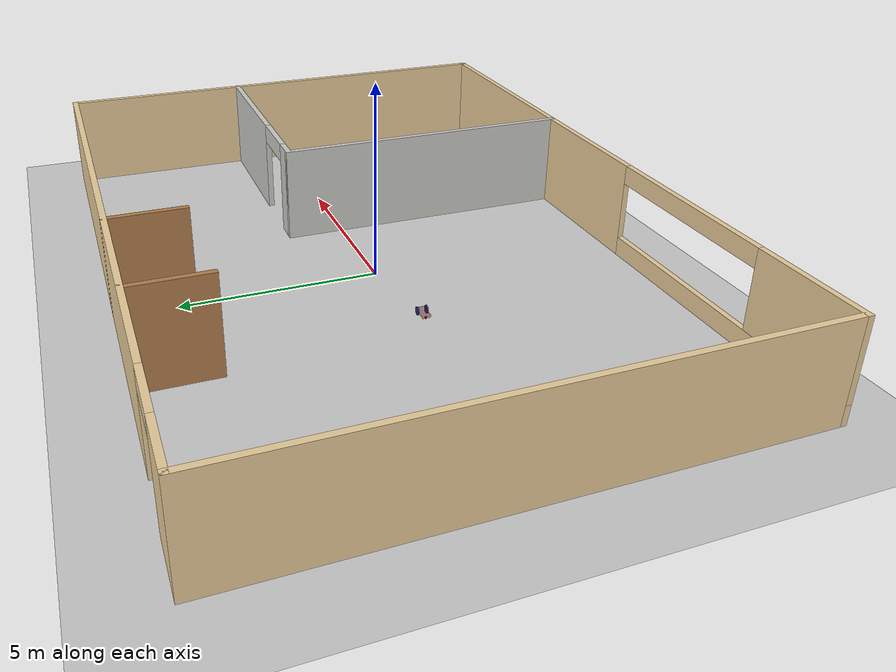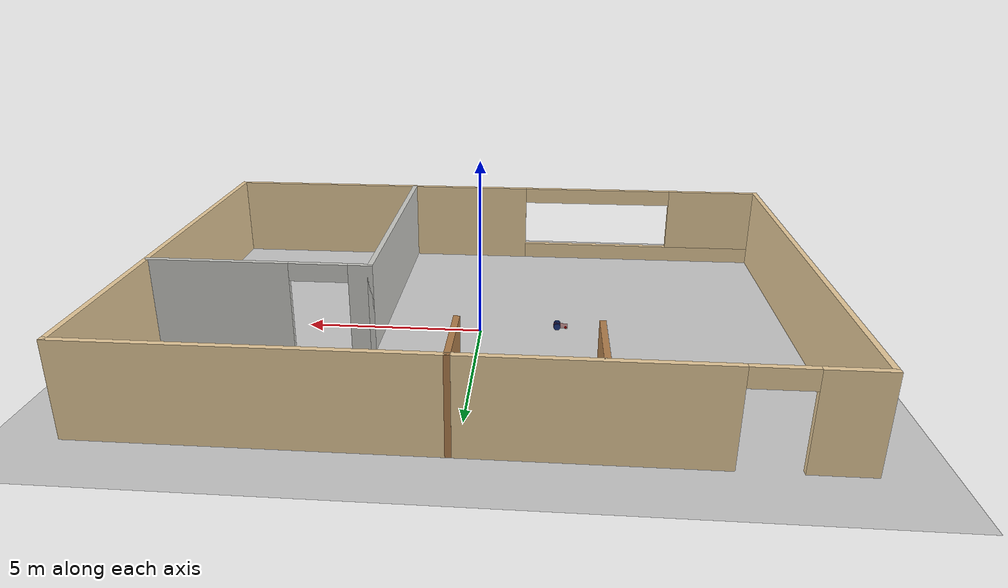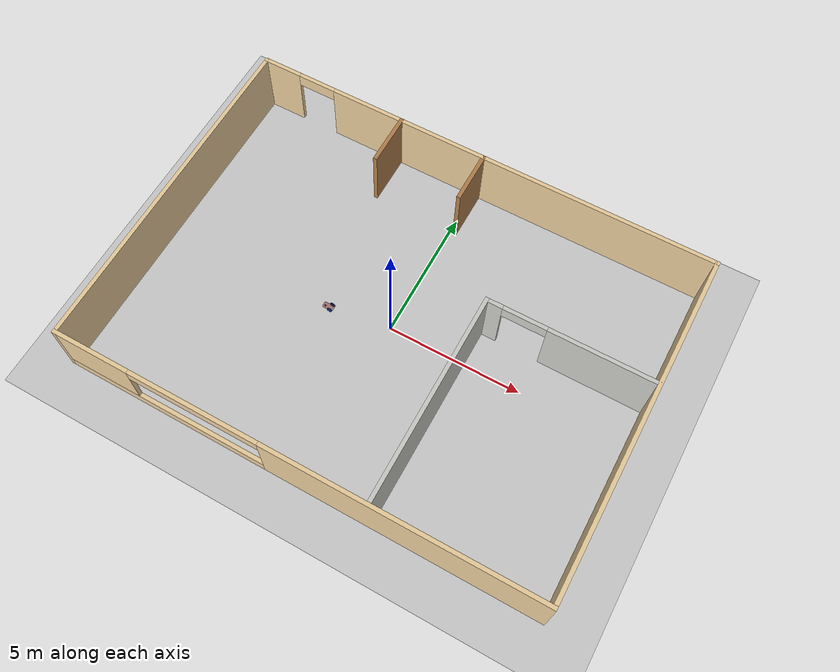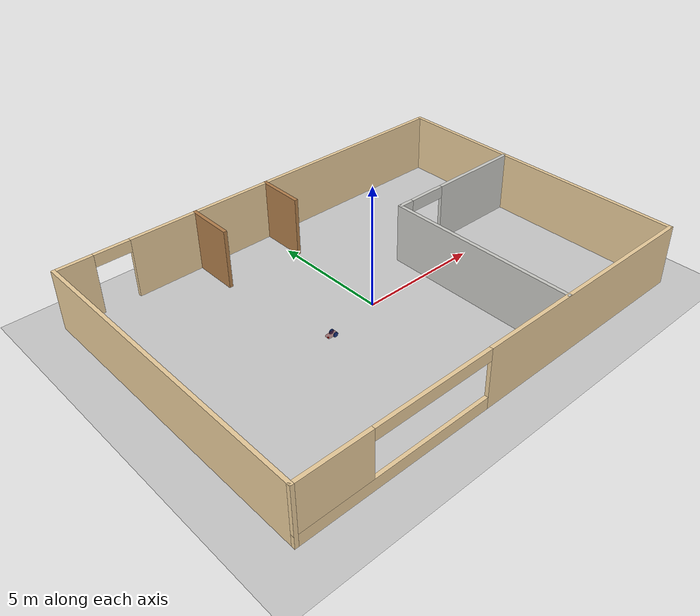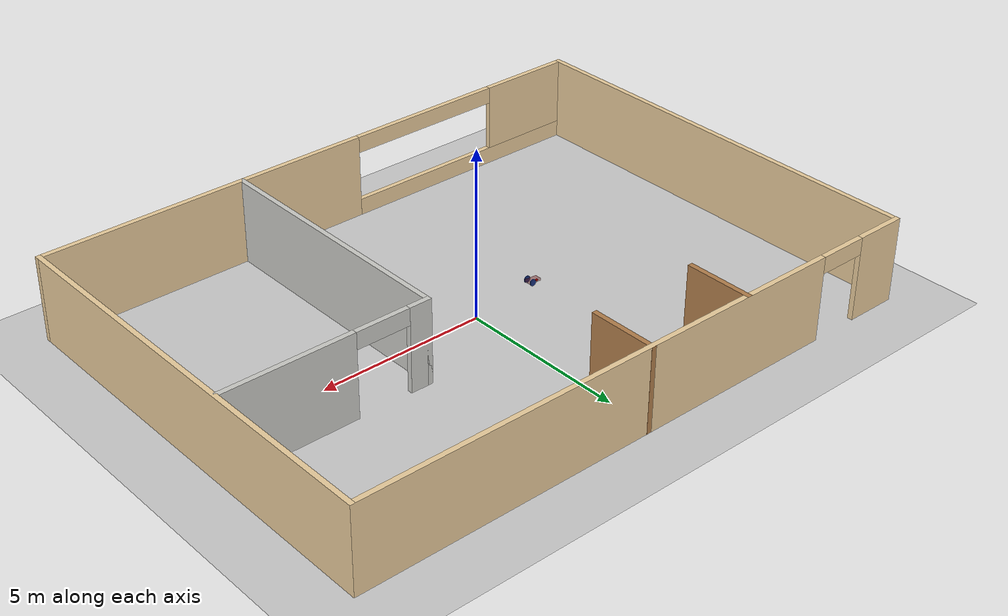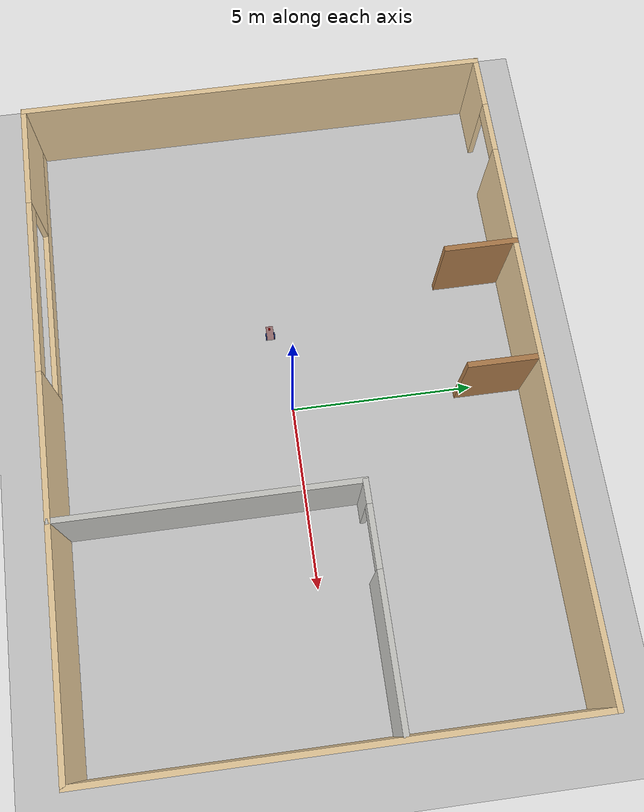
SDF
<sdf version="1.6">
 <world name="default">
  <model name="ground_plane">
   <static>1</static>
   <link name="link">
    <collision name="collision">
     <geometry><plane><normal>0 0 1</normal><size>100 100</size></plane></geometry>
     <surface>
      <contact><collide_bitmask>65535</collide_bitmask></contact>
      <friction><ode><mu>100</mu><mu2>50</mu2></ode></friction>
     </surface>
    </collision>
    <visual name="visual">
     <cast_shadows>0</cast_shadows>
     <geometry><plane><normal>0 0 1</normal><size>100 100</size></plane></geometry>
     <material>
      <script><uri>file://media/materials/scripts/gazebo.material</uri><name>Gazebo/Grey</name></script>
     </material>
    </visual>
   </link>
  </model>
  <model name="myapartment">
   <pose>0.04372 -0.00253 0 0 -0 0</pose>
   <link name="Wall_13">
    <collision name="Wall_13_Collision">
     <geometry><box><size>8 0.15 2.5</size></box></geometry>
     <pose>0 0 1.25 0 -0 0</pose>
    </collision>
    <visual name="Wall_13_Visual">
     <pose>0 0 1.25 0 -0 0</pose>
     <geometry><box><size>8 0.15 2.5</size></box></geometry>
     <material>
      <script><uri>file://media/materials/scripts/gazebo.material</uri><name>Gazebo/CeilingTiled</name></script>
      <ambient>0 0.666667 1 1</ambient>
     </material>
     <meta><layer>0</layer></meta>
    </visual>
    <pose>2.77622 -2.48679 0 0 -0 1.5708</pose>
   </link>
   <link name="Wall_14">
    <pose>5.82622 1.43821 0 0 -0 0</pose>
    <visual name="Wall_14_Visual_0">
     <pose>-2.78661 0 1.25 0 -0 0</pose>
     <geometry><box><size>0.676771 0.15 2.5</size></box></geometry>
     <material>
      <script><uri>file://media/materials/scripts/gazebo.material</uri><name>Gazebo/CeilingTiled</name></script>
      <ambient>0 0.666667 1 1</ambient>
     </material>
     <meta><layer>0</layer></meta>
    </visual>
    <collision name="Wall_14_Collision_0">
     <geometry><box><size>0.676771 0.15 2.5</size></box></geometry>
     <pose>-2.78661 0 1.25 0 -0 0</pose>
    </collision>
    <visual name="Wall_14_Visual_1">
     <pose>1.14693 0 1.25 0 -0 0</pose>
     <geometry><box><size>3.95614 0.15 2.5</size></box></geometry>
     <material>
      <script><uri>file://media/materials/scripts/gazebo.material</uri><name>Gazebo/CeilingTiled</name></script>
      <ambient>0 0.666667 1 1</ambient>
     </material>
     <meta><layer>0</layer></meta>
    </visual>
    <collision name="Wall_14_Collision_1">
     <geometry><box><size>3.95614 0.15 2.5</size></box></geometry>
     <pose>1.14693 0 1.25 0 -0 0</pose>
    </collision>
    <visual name="Wall_14_Visual_2">
     <pose>-1.63968 0 2.25 0 -0 0</pose>
     <geometry><box><size>1.61709 0.15 0.5</size></box></geometry>
     <material>
      <script><uri>file://media/materials/scripts/gazebo.material</uri><name>Gazebo/CeilingTiled</name></script>
      <ambient>0 0.666667 1 1</ambient>
     </material>
     <meta><layer>0</layer></meta>
    </visual>
    <collision name="Wall_14_Collision_2">
     <geometry><box><size>1.61709 0.15 0.5</size></box></geometry>
     <pose>-1.63968 0 2.25 0 -0 0</pose>
    </collision>
   </link>
   <link name="Wall_2">
    <pose>0 6.42373 0 0 -0 0</pose>
    <visual name="Wall_2_Visual_0">
     <pose>-8.23049 0 1.25 0 -0 0</pose>
     <geometry><box><size>1.53902 0.15 2.5</size></box></geometry>
     <material>
      <script><uri>file://media/materials/scripts/gazebo.material</uri><name>Gazebo/Grey</name></script>
      <ambient>0.921569 0.807843 0.615686 1</ambient>
     </material>
     <meta><layer>0</layer></meta>
    </visual>
    <collision name="Wall_2_Collision_0">
     <geometry><box><size>1.53902 0.15 2.5</size></box></geometry>
     <pose>-8.23049 0 1.25 0 -0 0</pose>
    </collision>
    <visual name="Wall_2_Visual_1">
     <pose>1.49935 0 1.25 0 -0 0</pose>
     <geometry><box><size>15.0013 0.15 2.5</size></box></geometry>
     <material>
      <script><uri>file://media/materials/scripts/gazebo.material</uri><name>Gazebo/Grey</name></script>
      <ambient>0.921569 0.807843 0.615686 1</ambient>
     </material>
     <meta><layer>0</layer></meta>
    </visual>
    <collision name="Wall_2_Collision_1">
     <geometry><box><size>15.0013 0.15 2.5</size></box></geometry>
     <pose>1.49935 0 1.25 0 -0 0</pose>
    </collision>
    <visual name="Wall_2_Visual_2">
     <pose>-6.73114 0 2.25 0 -0 0</pose>
     <geometry><box><size>1.45968 0.15 0.5</size></box></geometry>
     <material>
      <script><uri>file://media/materials/scripts/gazebo.material</uri><name>Gazebo/Grey</name></script>
      <ambient>0.921569 0.807843 0.615686 1</ambient>
     </material>
     <meta><layer>0</layer></meta>
    </visual>
    <collision name="Wall_2_Collision_2">
     <geometry><box><size>1.45968 0.15 0.5</size></box></geometry>
     <pose>-6.73114 0 2.25 0 -0 0</pose>
    </collision>
   </link>
   <link name="Wall_20">
    <collision name="Wall_20_Collision">
     <geometry><box><size>2 0.15 2.5</size></box></geometry>
     <pose>0 0 1.25 0 -0 0</pose>
    </collision>
    <visual name="Wall_20_Visual">
     <pose>0 0 1.25 0 -0 0</pose>
     <geometry><box><size>2 0.15 2.5</size></box></geometry>
     <material>
      <script><uri>file://media/materials/scripts/gazebo.material</uri><name>Gazebo/Wood</name></script>
      <ambient>0 0.666667 1 1</ambient>
     </material>
     <meta><layer>0</layer></meta>
    </visual>
    <pose>0.133709 5.50127 0 0 -0 -1.5708</pose>
   </link>
   <link name="Wall_22">
    <collision name="Wall_22_Collision">
     <geometry><box><size>2 0.15 2.5</size></box></geometry>
     <pose>0 0 1.25 0 -0 0</pose>
    </collision>
    <visual name="Wall_22_Visual">
     <pose>0 0 1.25 0 -0 0</pose>
     <geometry><box><size>2 0.15 2.5</size></box></geometry>
     <material>
      <script><uri>file://media/materials/scripts/gazebo.material</uri><name>Gazebo/Wood</name></script>
      <ambient>0 0.666667 1 1</ambient>
     </material>
     <meta><layer>0</layer></meta>
    </visual>
    <pose>-3.1894 5.49654 0 0 -0 -1.5708</pose>
   </link>
   <link name="Wall_6">
    <collision name="Wall_6_Collision">
     <geometry><box><size>13 0.15 2.5</size></box></geometry>
     <pose>0 0 1.25 0 -0 0</pose>
    </collision>
    <visual name="Wall_6_Visual">
     <pose>0 0 1.25 0 -0 0</pose>
     <geometry><box><size>13 0.15 2.5</size></box></geometry>
     <material>
      <script><uri>file://media/materials/scripts/gazebo.material</uri><name>Gazebo/Grey</name></script>
      <ambient>0.921569 0.807843 0.615686 1</ambient>
     </material>
     <meta><layer>0</layer></meta>
    </visual>
    <pose>8.925 -0.001273 0 0 -0 -1.5708</pose>
   </link>
   <link name="Wall_7">
    <pose>0 -6.42627 0 0 -0 3.14159</pose>
    <visual name="Wall_7_Visual_0">
     <pose>-3.92872 0 1.25 0 -0 0</pose>
     <geometry><box><size>10.1426 0.15 2.5</size></box></geometry>
     <material>
      <script><uri>file://media/materials/scripts/gazebo.material</uri><name>Gazebo/Grey</name></script>
      <ambient>0.921569 0.807843 0.615686 1</ambient>
     </material>
     <meta><layer>0</layer></meta>
    </visual>
    <collision name="Wall_7_Collision_0">
     <geometry><box><size>10.1426 0.15 2.5</size></box></geometry>
     <pose>-3.92872 0 1.25 0 -0 0</pose>
    </collision>
    <visual name="Wall_7_Visual_1">
     <pose>5.07128 0 0.25 0 -0 0</pose>
     <geometry><box><size>7.85743 0.15 0.5</size></box></geometry>
     <material>
      <script><uri>file://media/materials/scripts/gazebo.material</uri><name>Gazebo/Grey</name></script>
      <ambient>0.921569 0.807843 0.615686 1</ambient>
     </material>
     <meta><layer>0</layer></meta>
    </visual>
    <collision name="Wall_7_Collision_1">
     <geometry><box><size>7.85743 0.15 0.5</size></box></geometry>
     <pose>5.07128 0 0.25 0 -0 0</pose>
    </collision>
    <visual name="Wall_7_Visual_2">
     <pose>7.51928 0 1.5 0 -0 0</pose>
     <geometry><box><size>2.96143 0.15 2</size></box></geometry>
     <material>
      <script><uri>file://media/materials/scripts/gazebo.material</uri><name>Gazebo/Grey</name></script>
      <ambient>0.921569 0.807843 0.615686 1</ambient>
     </material>
     <meta><layer>0</layer></meta>
    </visual>
    <collision name="Wall_7_Collision_2">
     <geometry><box><size>2.96143 0.15 2</size></box></geometry>
     <pose>7.51928 0 1.5 0 -0 0</pose>
    </collision>
    <visual name="Wall_7_Visual_3">
     <pose>3.59057 0 2.2555 0 -0 0</pose>
     <geometry><box><size>4.896 0.15 0.489</size></box></geometry>
     <material>
      <script><uri>file://media/materials/scripts/gazebo.material</uri><name>Gazebo/Grey</name></script>
      <ambient>0.921569 0.807843 0.615686 1</ambient>
     </material>
     <meta><layer>0</layer></meta>
    </visual>
    <collision name="Wall_7_Collision_3">
     <geometry><box><size>4.896 0.15 0.489</size></box></geometry>
     <pose>3.59057 0 2.2555 0 -0 0</pose>
    </collision>
   </link>
   <link name="Wall_8">
    <collision name="Wall_8_Collision">
     <geometry><box><size>13 0.15 2.5</size></box></geometry>
     <pose>0 0 1.25 0 -0 0</pose>
    </collision>
    <visual name="Wall_8_Visual">
     <pose>0 0 1.25 0 -0 0</pose>
     <geometry><box><size>13 0.15 2.5</size></box></geometry>
     <material>
      <script><uri>file://media/materials/scripts/gazebo.material</uri><name>Gazebo/Grey</name></script>
      <ambient>0.921569 0.807843 0.615686 1</ambient>
     </material>
     <meta><layer>0</layer></meta>
    </visual>
    <pose>-8.925 -0.001273 0 0 -0 1.5708</pose>
   </link>
   <static>1</static>
  </model>
  <model name="r2d2_0">
   <link name="chassis">
    <pose>0 -0 0.1 0 -0 0</pose>
    <inertial>
     <inertia><ixx>0</ixx><ixy>0</ixy><ixz>0</ixz><iyy>0</iyy><iyz>0</iyz><izz>0</izz></inertia>
     <mass>0.641471</mass>
    </inertial>
    <visual name="visual">
     <geometry><box><size>0.4 0.2 0.066426</size></box></geometry>
     <material>
      <ambient>0.4 0 0 0.4</ambient>
      <diffuse>0.4 0 0 0.4</diffuse>
      <specular>0.4 0 0 0.4</specular>
      <emissive>0.4 0 0 0.4</emissive>
      <script><name>ModelPreview_1::chassis::visual_MATERIAL_</name><uri>__default__</uri></script>
      <shader type="vertex"><normal_map>__default__</normal_map></shader>
     </material>
    </visual>
    <visual name="caster_visual">
     <pose>-0.15 0 -0.05 0 -0 0</pose>
     <geometry><sphere><radius>0.0332131</radius></sphere></geometry>
     <material>
      <shader type="vertex"><normal_map>__default__</normal_map></shader>
      <ambient>0.8 0 0 0</ambient>
      <diffuse>0.8 0 0 0</diffuse>
      <specular>0.8 0 0 0</specular>
      <emissive>0.8 0 0 0</emissive>
      <script><name>ModelPreview_4::chassis::caster_visual_MATERIAL_</name><uri>__default__</uri></script>
     </material>
    </visual>
    <collision name="collision">
     <geometry><box><size>0.4 0.2 0.066426</size></box></geometry>
     <surface>
      <friction>
       <ode><mu>1</mu><mu2>1</mu2><fdir1>0 0 0</fdir1><slip1>0</slip1><slip2>0</slip2></ode>
       <torsional>
        <coefficient>1</coefficient>
        <patch_radius>0</patch_radius>
        <surface_radius>0</surface_radius>
        <use_patch_radius>1</use_patch_radius>
        <ode><slip>0</slip></ode>
       </torsional>
      </friction>
      <bounce><restitution_coefficient>0</restitution_coefficient><threshold>1e+06</threshold></bounce>
      <contact>
       <collide_without_contact>0</collide_without_contact>
       <collide_without_contact_bitmask>1</collide_without_contact_bitmask>
       <collide_bitmask>1</collide_bitmask>
       <ode>
        <soft_cfm>0</soft_cfm>
        <soft_erp>0.2</soft_erp>
        <kp>1e+13</kp>
        <kd>1</kd>
        <max_vel>0.01</max_vel>
        <min_depth>0</min_depth>
       </ode>
       <bullet>
        <split_impulse>1</split_impulse>
        <split_impulse_penetration_threshold>-0.01</split_impulse_penetration_threshold>
        <soft_cfm>0</soft_cfm>
        <soft_erp>0.2</soft_erp>
        <kp>1e+13</kp>
        <kd>1</kd>
       </bullet>
      </contact>
     </surface>
    </collision>
    <collision name="caster_collision">
     <pose>-0.15 0 -0.05 0 -0 0</pose>
     <geometry><sphere><radius>0.033213</radius></sphere></geometry>
     <surface>
      <friction>
       <ode><mu>0</mu><mu2>0</mu2><fdir1>0 0 0</fdir1><slip1>1</slip1><slip2>1</slip2></ode>
       <torsional>
        <coefficient>1</coefficient>
        <patch_radius>0</patch_radius>
        <surface_radius>0</surface_radius>
        <use_patch_radius>1</use_patch_radius>
        <ode><slip>0</slip></ode>
       </torsional>
      </friction>
      <bounce><restitution_coefficient>0</restitution_coefficient><threshold>1e+06</threshold></bounce>
      <contact>
       <collide_without_contact>0</collide_without_contact>
       <collide_without_contact_bitmask>1</collide_without_contact_bitmask>
       <collide_bitmask>1</collide_bitmask>
       <ode>
        <soft_cfm>0</soft_cfm>
        <soft_erp>0.2</soft_erp>
        <kp>1e+13</kp>
        <kd>1</kd>
        <max_vel>0.01</max_vel>
        <min_depth>0</min_depth>
       </ode>
       <bullet>
        <split_impulse>1</split_impulse>
        <split_impulse_penetration_threshold>-0.01</split_impulse_penetration_threshold>
        <soft_cfm>0</soft_cfm>
        <soft_erp>0.2</soft_erp>
        <kp>1e+13</kp>
        <kd>1</kd>
       </bullet>
      </contact>
     </surface>
    </collision>
   </link>
   <link name="left_wheel">
    <pose>0.1 0.115 0.1 -0.00333 1.5707 1.56736</pose>
    <inertial>
     <inertia><ixx>1</ixx><ixy>0</ixy><ixz>0</ixz><iyy>1</iyy><iyz>0</iyz><izz>1</izz></inertia>
     <mass>1</mass>
    </inertial>
    <visual name="visual_lw">
     <geometry><cylinder><radius>0.1</radius><length>0.03</length></cylinder></geometry>
     <material>
      <ambient>0.1 0.2 0.5 0</ambient>
      <diffuse>0.1 0.2 0.5 0</diffuse>
      <specular>0.1 0.2 0.5 0</specular>
      <emissive>0 0 0 1</emissive>
      <script><name>ModelPreview_1::left_wheel::visual_lw_MATERIAL_</name><uri>__default__</uri></script>
      <shader type="vertex"><normal_map>__default__</normal_map></shader>
     </material>
    </visual>
    <collision name="collision_lw">
     <geometry><cylinder><radius>0.1</radius><length>0.03</length></cylinder></geometry>
     <surface>
      <friction>
       <ode><mu>1</mu><mu2>1</mu2><fdir1>0 0 0</fdir1><slip1>0</slip1><slip2>0</slip2></ode>
       <torsional>
        <coefficient>1</coefficient>
        <patch_radius>0</patch_radius>
        <surface_radius>0</surface_radius>
        <use_patch_radius>1</use_patch_radius>
        <ode><slip>0</slip></ode>
       </torsional>
      </friction>
      <bounce><restitution_coefficient>0</restitution_coefficient><threshold>1e+06</threshold></bounce>
      <contact>
       <collide_without_contact>0</collide_without_contact>
       <collide_without_contact_bitmask>1</collide_without_contact_bitmask>
       <collide_bitmask>1</collide_bitmask>
       <ode>
        <soft_cfm>0</soft_cfm>
        <soft_erp>0.2</soft_erp>
        <kp>1e+13</kp>
        <kd>1</kd>
        <max_vel>0.01</max_vel>
        <min_depth>0</min_depth>
       </ode>
       <bullet>
        <split_impulse>1</split_impulse>
        <split_impulse_penetration_threshold>-0.01</split_impulse_penetration_threshold>
        <soft_cfm>0</soft_cfm>
        <soft_erp>0.2</soft_erp>
        <kp>1e+13</kp>
        <kd>1</kd>
       </bullet>
      </contact>
     </surface>
    </collision>
   </link>
   <link name="right_wheel">
    <pose>0.1 -0.115 0.1 -0.004565 1.5707 1.56612</pose>
    <inertial>
     <inertia><ixx>1</ixx><ixy>0</ixy><ixz>0</ixz><iyy>1</iyy><iyz>0</iyz><izz>1</izz></inertia>
     <mass>1</mass>
    </inertial>
    <visual name="visual_rw">
     <geometry><cylinder><radius>0.1</radius><length>0.03</length></cylinder></geometry>
     <material>
      <ambient>0.1 0.2 0.5 0</ambient>
      <diffuse>0.1 0.2 0.5 0</diffuse>
      <specular>0.1 0.2 0.5 0</specular>
      <emissive>0 0 0 1</emissive>
      <script><name>ModelPreview_1::right_wheel::visual_rw_MATERIAL_</name><uri>__default__</uri></script>
      <shader type="vertex"><normal_map>__default__</normal_map></shader>
     </material>
    </visual>
    <collision name="collision_rw">
     <geometry><cylinder><radius>0.1</radius><length>0.03</length></cylinder></geometry>
     <surface>
      <friction>
       <ode><mu>1</mu><mu2>1</mu2><fdir1>0 0 0</fdir1><slip1>0</slip1><slip2>0</slip2></ode>
       <torsional>
        <coefficient>1</coefficient>
        <patch_radius>0</patch_radius>
        <surface_radius>0</surface_radius>
        <use_patch_radius>1</use_patch_radius>
        <ode><slip>0</slip></ode>
       </torsional>
      </friction>
      <bounce><restitution_coefficient>0</restitution_coefficient><threshold>1e+06</threshold></bounce>
      <contact>
       <collide_without_contact>0</collide_without_contact>
       <collide_without_contact_bitmask>1</collide_without_contact_bitmask>
       <collide_bitmask>1</collide_bitmask>
       <ode>
        <soft_cfm>0</soft_cfm>
        <soft_erp>0.2</soft_erp>
        <kp>1e+13</kp>
        <kd>1</kd>
        <max_vel>0.01</max_vel>
        <min_depth>0</min_depth>
       </ode>
       <bullet>
        <split_impulse>1</split_impulse>
        <split_impulse_penetration_threshold>-0.01</split_impulse_penetration_threshold>
        <soft_cfm>0</soft_cfm>
        <soft_erp>0.2</soft_erp>
        <kp>1e+13</kp>
        <kd>1</kd>
       </bullet>
      </contact>
     </surface>
    </collision>
   </link>
   <joint name="lw_hinge" type="revolute">
    <parent>chassis</parent>
    <child>left_wheel</child>
    <pose>0 0 -0.03 0 -0 0</pose>
    <axis>
     <xyz>0 1 0</xyz>
     <use_parent_model_frame>0</use_parent_model_frame>
     <limit><lower>-1e+16</lower><upper>1e+16</upper><effort>-1</effort><velocity>-1</velocity></limit>
     <dynamics>
      <spring_reference>0</spring_reference>
      <spring_stiffness>0</spring_stiffness>
      <damping>0</damping>
      <friction>0</friction>
     </dynamics>
    </axis>
    <physics>
     <ode><limit><cfm>0</cfm><erp>0.2</erp></limit><suspension><cfm>0</cfm><erp>0.2</erp></suspension></ode>
    </physics>
   </joint>
   <joint name="rw_hinge" type="revolute">
    <parent>chassis</parent>
    <child>right_wheel</child>
    <pose>0 0 0.03 0 -0 0</pose>
    <axis>
     <xyz>0 1 0</xyz>
     <use_parent_model_frame>0</use_parent_model_frame>
     <limit><lower>-1e+16</lower><upper>1e+16</upper><effort>-1</effort><velocity>-1</velocity></limit>
     <dynamics>
      <spring_reference>0</spring_reference>
      <spring_stiffness>0</spring_stiffness>
      <damping>0</damping>
      <friction>0</friction>
     </dynamics>
    </axis>
    <physics>
     <ode><limit><cfm>0</cfm><erp>0.2</erp></limit><suspension><cfm>0</cfm><erp>0.2</erp></suspension></ode>
    </physics>
   </joint>
   <static>0</static>
   <pose>-2.31001 -0.352779 -0.006531 3.1e-05 -0.067653 0.001268</pose>
  </model>
 </world>
</sdf>
